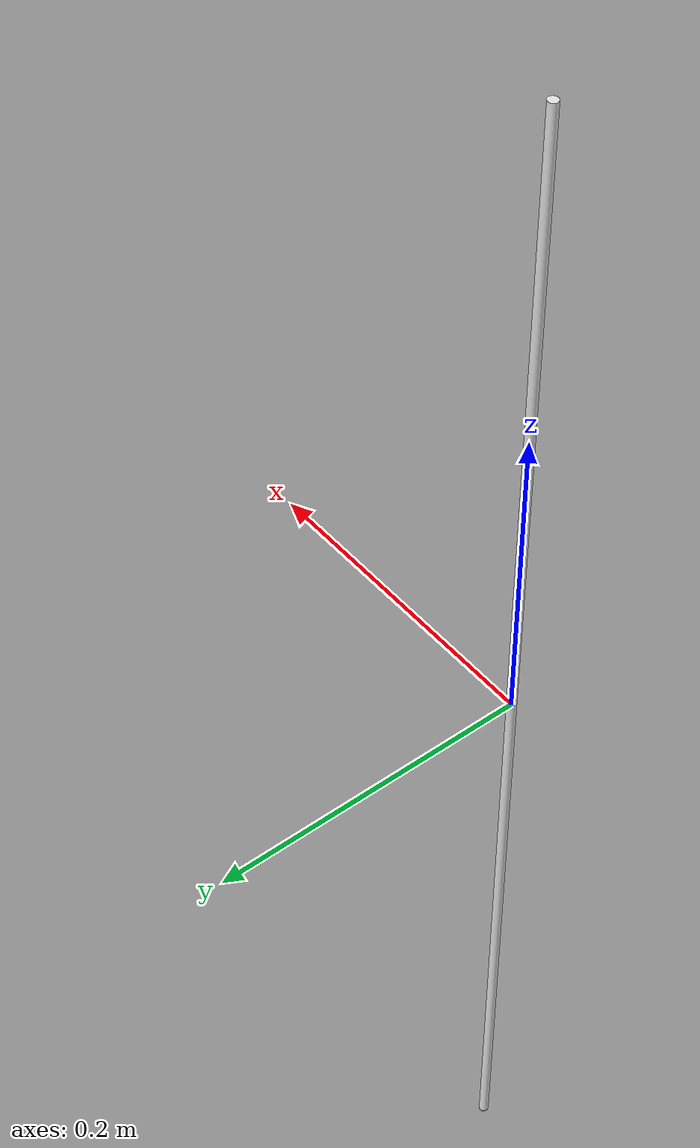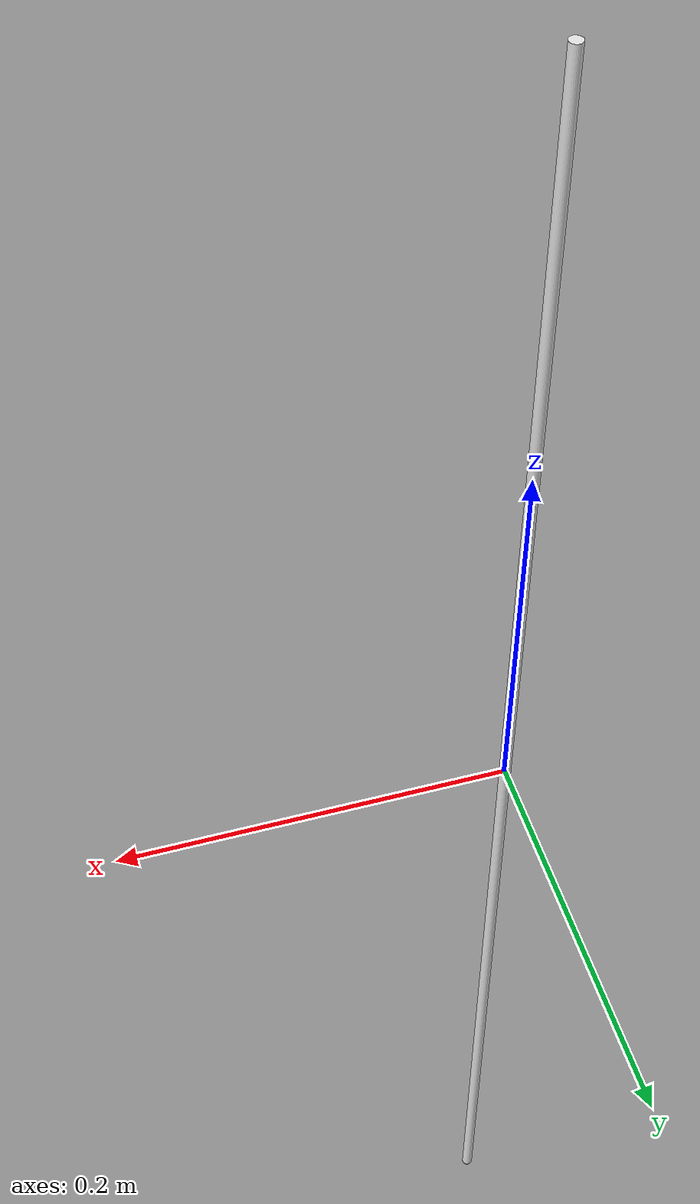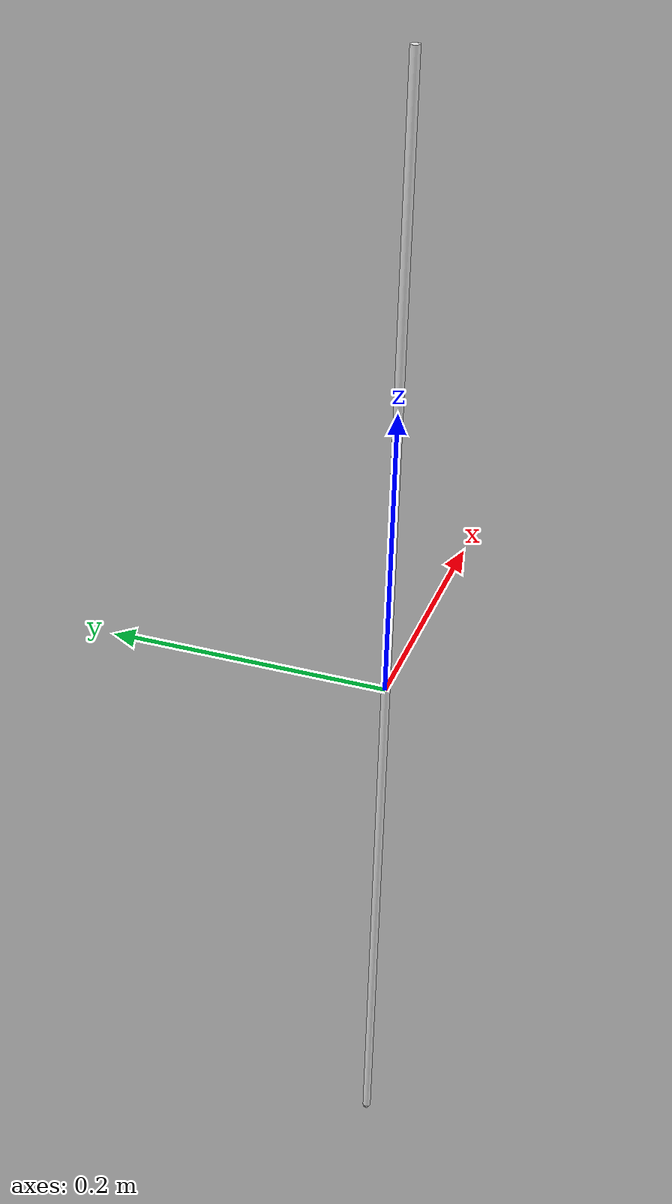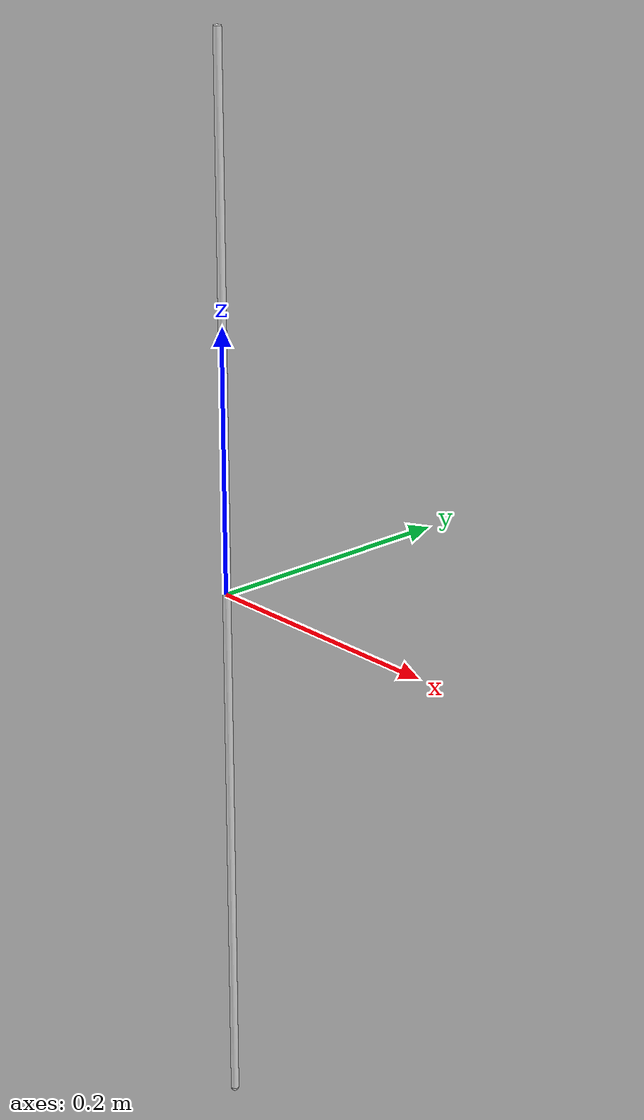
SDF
<?xml version="1.0"?>
<sdf version="1.7">

  <!-- Note:
       This file defines the model for a pole with a tiny massless ball attached
        to the bottom for point contact. The cylinder's center is at the origin.
  -->
  <model name="pole">
    <link name="cylinder">
      <inertial>
        <mass>0.1649</mass>
        <inertia>
          <ixx>0.11088</ixx>
          <ixy>0</ixy>
          <ixz>0</ixz>
          <iyy>0.11088</iyy>
          <iyz>0</iyz>
          <izz>0</izz>
        </inertia>
      </inertial>

      <visual name="pole_visual">
        <geometry>
          <cylinder>
            <radius>0.003</radius>
            <length>0.82</length>
          </cylinder>
        </geometry>
        <material>
          <diffuse>0.9 0.9 0.9 0.9</diffuse>
        </material>
      </visual>

      <collision name="collision">
        <geometry>
          <cylinder>
            <radius>0.0003</radius>
            <length>0.82</length>
          </cylinder>
        </geometry>
        <surface>
          <friction>
            <ode>
              <mu>1.0</mu>
              <mu2>1.0</mu2>
            </ode>
          </friction>
        </surface>
      </collision>

      <collision name="bottom_corner">
        <pose> 0 0 -0.41 0 0 0</pose>
        <geometry>
          <sphere>
            <radius>0.003</radius>
          </sphere>
        </geometry>
        <surface>
            <friction>
                <ode>
                  <mu>1.0</mu>
                  <mu2>1.0</mu2>
                </ode>
              </friction>
        </surface>
      </collision>

      <visual name="ball_collision_visual">
      <pose> 0 0 -0.41 0 0 0</pose>
        <geometry>
          <sphere>
            <radius>0.003</radius>
          </sphere>
        </geometry>
        <material>
          <diffuse>0.9 0.9 0.9 0.9</diffuse>
        </material>
      </visual>

    </link>
  </model>
</sdf>
